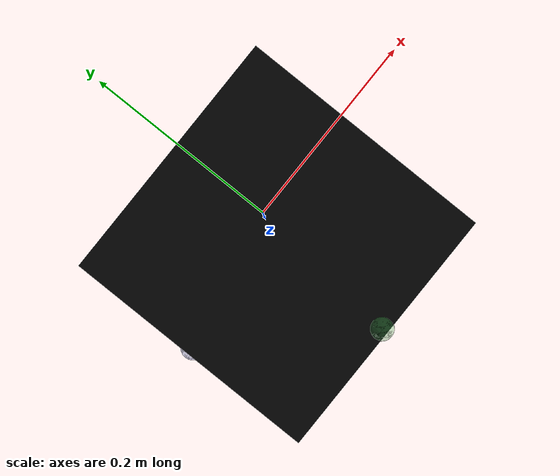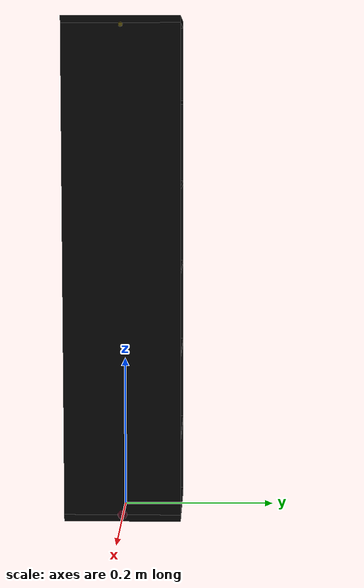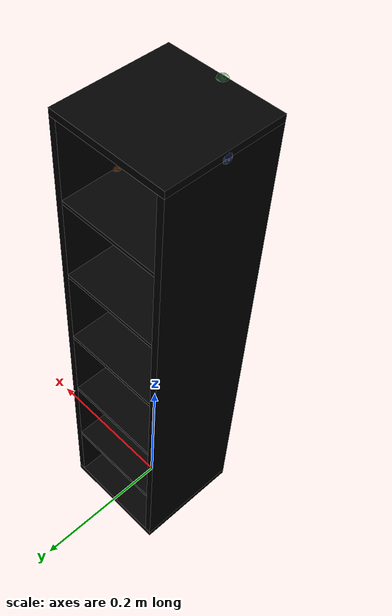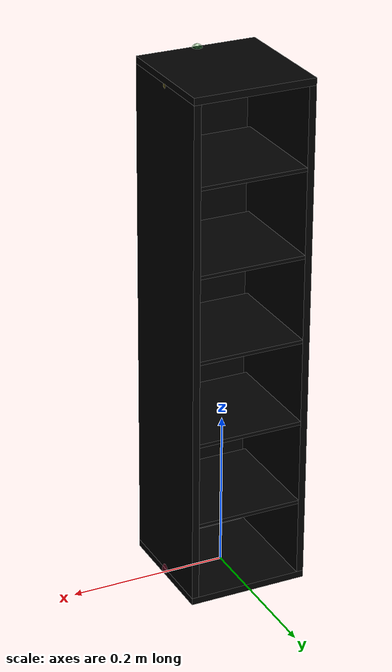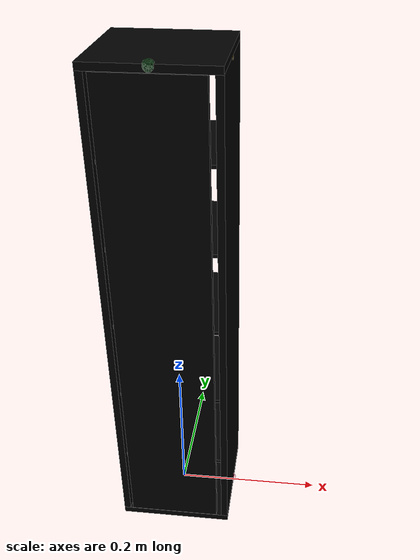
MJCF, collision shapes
<mujoco model="bookcase_expedit_0373">
    <custom>
        <numeric data="-0.087926 -0.242964 0.004485 0.734781 0.0 0.0 -0.678305" name="0_part0_initpos"/>
        <numeric data="-0.304189 0.094349 0.003391 0.707107 0.707107 0.00029 0.00029" name="9_part9_initpos"/>
        <numeric data="-0.082569 0.361092 0.004485 -0.0 -0.005077 -0.999987 -0.0" name="8_part8_initpos"/>
        <numeric data="0.322127 -0.048208 0.002227 0.706374 0.0 -0.0 -0.707839" name="7_part7_initpos"/>
        <numeric data="-0.102243 0.157546 0.002227 0.706824 -0.0 -0.0 -0.70739" name="6_part6_initpos"/>
        <numeric data="0.323127 0.154453 0.002227 0.707113 0.0 -0.0 -0.7071" name="5_part5_initpos"/>
        <numeric data="0.330924 0.356912 0.002227 0.707107 0.0 0.0 -0.707107" name="4_part4_initpos"/>
        <numeric data="-0.09461 -0.030414 0.002227 0.708679 0.0 -0.0 -0.705531" name="3_part3_initpos"/>
        <numeric data="0.111239 0.104158 0.004485 0.500241 -0.499759 0.500241 0.499759" name="2_part2_initpos"/>
        <numeric data="-0.518069 0.096799 0.004485 0.500624 0.499375 0.500624 -0.499375" name="1_part1_initpos"/>
    </custom>
    <asset>
        <mesh file="bookcase_expedit_0373/0.stl" name="part0" scale="0.000355484448 0.000355484448 0.000355484448"/>
        <mesh file="bookcase_expedit_0373/9.stl" name="part9" scale="0.000355484448 0.000355484448 0.000355484448"/>
        <mesh file="bookcase_expedit_0373/8.stl" name="part8" scale="0.000355484448 0.000355484448 0.000355484448"/>
        <mesh file="bookcase_expedit_0373/7.stl" name="part7" scale="0.000355484448 0.000355484448 0.000355484448"/>
        <mesh file="bookcase_expedit_0373/6.stl" name="part6" scale="0.000355484448 0.000355484448 0.000355484448"/>
        <mesh file="bookcase_expedit_0373/5.stl" name="part5" scale="0.000355484448 0.000355484448 0.000355484448"/>
        <mesh file="bookcase_expedit_0373/4.stl" name="part4" scale="0.000355484448 0.000355484448 0.000355484448"/>
        <mesh file="bookcase_expedit_0373/3.stl" name="part3" scale="0.000355484448 0.000355484448 0.000355484448"/>
        <mesh file="bookcase_expedit_0373/2.stl" name="part2" scale="0.000355484448 0.000355484448 0.000355484448"/>
        <mesh file="bookcase_expedit_0373/1.stl" name="part1" scale="0.000355484448 0.000355484448 0.000355484448"/>
    </asset>
    <equality>
        <weld active="false" body1="8_part8" body2="1_part1" solimp="1 1 0.5" solref="0.01 0.3"/>
        <weld active="false" body1="8_part8" body2="2_part2" solimp="1 1 0.5" solref="0.01 0.3"/>
        <weld active="false" body1="0_part0" body2="2_part2" solimp="1 1 0.5" solref="0.01 0.3"/>
        <weld active="false" body1="5_part5" body2="2_part2" solimp="1 1 0.5" solref="0.01 0.3"/>
        <weld active="false" body1="6_part6" body2="2_part2" solimp="1 1 0.5" solref="0.01 0.3"/>
        <weld active="false" body1="7_part7" body2="2_part2" solimp="1 1 0.5" solref="0.01 0.3"/>
        <weld active="false" body1="3_part3" body2="2_part2" solimp="1 1 0.5" solref="0.01 0.3"/>
        <weld active="false" body1="4_part4" body2="2_part2" solimp="1 1 0.5" solref="0.01 0.3"/>
        <weld active="false" body1="9_part9" body2="8_part8" solimp="1 1 0.5" solref="0.01 0.3"/>
    </equality>
    <worldbody>
        <body name="0_part0" pos="-7.10968896e-11 0.0 0.0" quat="1 0 0 0">
            <geom conaffinity="0" contype="0" density="0" mesh="part0" name="0_part0_mesh" pos="0.0 0.0 0.0"
                  rgba="0.82 0.71 0.55 1" type="mesh"/>
            <site name="0_part0_horizontal_radius_site" pos="-7.10968896e-11 0.0 0.0" quat="1 0 0 0" rgba="0 0 0 0"
                  size="0.000355484448"/>
            <site name="0_part0_top_site" pos="-7.10968896e-11 0.0 0.0045146524895999995" quat="1 0 0 0" rgba="0 0 0 0"
                  size="0.000355484448"/>
            <site name="0_part0_bottom_site" pos="-7.10968896e-11 0.0 -0.0045146524895999995" quat="1 0 0 0"
                  rgba="0 0 0 0" size="0.000355484448"/>
            <site name="0_part0_corner_site8" pos="-0.07674909239429688 0.07674909559365692 0.0045146524895999995"
                  quat="1 0 0 0" rgba="0 0 0 0" size="0.00710968896"/>
            <site name="0_part0_corner_site7" pos="0.07674909225210311 0.07674909559365692 0.0045146524895999995"
                  quat="1 0 0 0" rgba="0 0 0 0" size="0.00710968896"/>
            <site name="0_part0_corner_site6" pos="0.07674909225210311 -0.07674909559365692 0.0045146524895999995"
                  quat="1 0 0 0" rgba="0 0 0 0" size="0.00710968896"/>
            <site name="0_part0_corner_site5" pos="-0.07674909239429688 -0.07674909559365692 0.0045146524895999995"
                  quat="1 0 0 0" rgba="0 0 0 0" size="0.00710968896"/>
            <site name="0_part0_corner_site4" pos="-0.07674909239429688 0.07674909559365692 -0.0045146524895999995"
                  quat="1 0 0 0" rgba="0 0 0 0" size="0.00710968896"/>
            <site name="0_part0_corner_site3" pos="0.07674909225210311 0.07674909559365692 -0.0045146524895999995"
                  quat="1 0 0 0" rgba="0 0 0 0" size="0.00710968896"/>
            <site name="0_part0_corner_site2" pos="0.07674909225210311 -0.07674909559365692 -0.0045146524895999995"
                  quat="1 0 0 0" rgba="0 0 0 0" size="0.00710968896"/>
            <site name="0_part0_corner_site1" pos="-0.07674909239429688 -0.07674909559365692 -0.0045146524895999995"
                  quat="1 0 0 0" rgba="0 0 0 0" size="0.00710968896"/>
            <site name="floor-leftwall,0,conn_site1" pos="0.07347863540159999 0.0 0.0045146524895999995" quat="1 0 0 0"
                  rgba="0.9019 0.0980 0.2941 0.3" size="0.00710968896"/>
            <geom density="50" name="noviz_collision_0_part0_0" pos="0.0 -3.5548444800000002e-09 0.0" quat="1 0 0 0"
                  rgba="0 0 0 0" size="0.0767490923232 0.0767490923232 0.0045146524895999995" solref="0.001 1"
                  type="box"/>
        </body>
        <body name="9_part9" pos="-1.8129706847999998e-09 -0.073363102956 0.32505498568546853" quat="1 0 0 0">
            <geom conaffinity="0" contype="0" density="0" mesh="part9" name="9_part9_mesh" pos="0.0 0.0 0.0"
                  rgba="0.82 0.71 0.55 1" type="mesh"/>
            <site name="9_part9_horizontal_radius_site" pos="0.0 0.0 0.0" quat="1 0 0 0" rgba="0 0 0 0"
                  size="0.000355484448"/>
            <site name="9_part9_top_site" pos="0.0 0.0 0.33002468183712735" quat="1 0 0 0" rgba="0 0 0 0"
                  size="0.000355484448"/>
            <site name="9_part9_bottom_site" pos="0.0 0.0 -0.33002468183712735" quat="1 0 0 0" rgba="0 0 0 0"
                  size="0.000355484448"/>
            <site name="9_part9_corner_site8" pos="-0.08448483592904224 0.0056433156120000005 0.33002468183712735"
                  quat="1 0 0 0" rgba="0 0 0 0" size="0.00710968896"/>
            <site name="9_part9_corner_site7" pos="0.08448483592904224 0.0056433156120000005 0.33002468183712735"
                  quat="1 0 0 0" rgba="0 0 0 0" size="0.00710968896"/>
            <site name="9_part9_corner_site6" pos="0.08448483592904224 -0.0056433156120000005 0.33002468183712735"
                  quat="1 0 0 0" rgba="0 0 0 0" size="0.00710968896"/>
            <site name="9_part9_corner_site5" pos="-0.08448483592904224 -0.0056433156120000005 0.33002468183712735"
                  quat="1 0 0 0" rgba="0 0 0 0" size="0.00710968896"/>
            <site name="9_part9_corner_site4" pos="-0.08448483592904224 0.0056433156120000005 -0.33002468183712735"
                  quat="1 0 0 0" rgba="0 0 0 0" size="0.00710968896"/>
            <site name="9_part9_corner_site3" pos="0.08448483592904224 0.0056433156120000005 -0.33002468183712735"
                  quat="1 0 0 0" rgba="0 0 0 0" size="0.00710968896"/>
            <site name="9_part9_corner_site2" pos="0.08448483592904224 -0.0056433156120000005 -0.33002468183712735"
                  quat="1 0 0 0" rgba="0 0 0 0" size="0.00710968896"/>
            <site name="9_part9_corner_site1" pos="-0.08448483592904224 -0.0056433156120000005 -0.33002468183712735"
                  quat="1 0 0 0" rgba="0 0 0 0" size="0.00710968896"/>
            <site name="backwall-top,0,conn_site1" pos="0.0 0.00016885866764447999 0.3269034983808"
                  quat="0.7071067 0.7071068 0 0" rgba="0.2352 0.7058 0.2941 0.3" size="0.00710968896"/>
            <geom density="50" name="noviz_collision_9_part9_0"
                  pos="-0.00177741868515552 0.001199760012 -5.901041836799999e-06" quat="1 0 0 0" rgba="0 0 0 0"
                  size="0.06220977840000001 0.004621297824 0.31993600320000004" solref="0.001 1" type="box"/>
        </body>
        <body name="8_part8" pos="-7.10968896e-11 0.0 0.6501099585023999" quat="1 0 0 0">
            <geom conaffinity="0" contype="0" density="0" mesh="part8" name="8_part8_mesh" pos="0.0 0.0 0.0"
                  rgba="0.82 0.71 0.55 1" type="mesh"/>
            <site name="8_part8_horizontal_radius_site" pos="-7.10968896e-11 0.0 -0.0" quat="1 0 0 0" rgba="0 0 0 0"
                  size="0.000355484448"/>
            <site name="8_part8_top_site" pos="-7.10968896e-11 0.0 0.0045146524895999995" quat="1 0 0 0" rgba="0 0 0 0"
                  size="0.000355484448"/>
            <site name="8_part8_bottom_site" pos="-7.10968896e-11 0.0 -0.0045146524895999995" quat="1 0 0 0"
                  rgba="0 0 0 0" size="0.000355484448"/>
            <site name="8_part8_corner_site8" pos="-0.07674909239429688 0.07674909559365692 0.0045146524895999995"
                  quat="1 0 0 0" rgba="0 0 0 0" size="0.00710968896"/>
            <site name="8_part8_corner_site7" pos="0.07674909225210311 0.07674909559365692 0.0045146524895999995"
                  quat="1 0 0 0" rgba="0 0 0 0" size="0.00710968896"/>
            <site name="8_part8_corner_site6" pos="0.07674909225210311 -0.07674909559365692 0.0045146524895999995"
                  quat="1 0 0 0" rgba="0 0 0 0" size="0.00710968896"/>
            <site name="8_part8_corner_site5" pos="-0.07674909239429688 -0.07674909559365692 0.0045146524895999995"
                  quat="1 0 0 0" rgba="0 0 0 0" size="0.00710968896"/>
            <site name="8_part8_corner_site4" pos="-0.07674909239429688 0.07674909559365692 -0.0045146524895999995"
                  quat="1 0 0 0" rgba="0 0 0 0" size="0.00710968896"/>
            <site name="8_part8_corner_site3" pos="0.07674909225210311 0.07674909559365692 -0.0045146524895999995"
                  quat="1 0 0 0" rgba="0 0 0 0" size="0.00710968896"/>
            <site name="8_part8_corner_site2" pos="0.07674909225210311 -0.07674909559365692 -0.0045146524895999995"
                  quat="1 0 0 0" rgba="0 0 0 0" size="0.00710968896"/>
            <site name="8_part8_corner_site1" pos="-0.07674909239429688 -0.07674909559365692 -0.0045146524895999995"
                  quat="1 0 0 0" rgba="0 0 0 0" size="0.00710968896"/>
            <site name="top-leftwall,0,conn_site1" pos="0.07038592070399999 0.0 -0.0066831253966224" quat="1 0 0 0"
                  rgba="1.0 0.8823 0.0980 0.3" size="0.00710968896"/>
            <site name="top-rightwall,0,conn_site1" pos="-0.07298095717440001 0.0 -0.00334156092088896" quat="1 0 0 0"
                  rgba="0.2627 0.3882 0.8470 0.3" size="0.00710968896"/>
            <site name="top-backwall,0,conn_site1" pos="0.0 -0.07319424784319999 0.0018485013553776"
                  quat="0.7071067 0.7071068 0 0" rgba="0.2352 0.7058 0.2941 0.3" size="0.00710968896"/>
            <geom density="50" name="noviz_collision_8_part8_0" pos="0.0 -3.5548444800000002e-09 0.0" quat="1 0 0 0"
                  rgba="0 0 0 0" size="0.0767490923232 0.0767490923232 0.004514677373511361" solref="0.001 1"
                  type="box"/>
        </body>
        <body name="7_part7" pos="-2.843875584e-10 0.0045146547291520225 0.5447680743065838" quat="1 0 0 0">
            <geom conaffinity="0" contype="0" density="0" mesh="part7" name="7_part7_mesh" pos="0.0 0.0 0.0"
                  rgba="0.82 0.71 0.55 1" type="mesh"/>
            <site name="7_part7_horizontal_radius_site" pos="2.132906688e-10 1.1020017888e-09 0.0" quat="1 0 0 0"
                  rgba="0 0 0 0" size="0.000355484448"/>
            <site name="7_part7_top_site" pos="1.7774222400000002e-10 1.1020017888e-09 0.0022573392555307967"
                  quat="1 0 0 0" rgba="0 0 0 0" size="0.000355484448"/>
            <site name="7_part7_bottom_site" pos="1.7774222400000002e-10 1.1020017888e-09 -0.0022573392555307967"
                  quat="1 0 0 0" rgba="0 0 0 0" size="0.000355484448"/>
            <site name="7_part7_corner_site8" pos="-0.067719787344 0.07223444417051027 0.0022573392555307967"
                  quat="1 0 0 0" rgba="0 0 0 0" size="0.00710968896"/>
            <site name="7_part7_corner_site7" pos="0.06771978773503289 0.07223444417051027 0.0022573392555307967"
                  quat="1 0 0 0" rgba="0 0 0 0" size="0.00710968896"/>
            <site name="7_part7_corner_site6" pos="0.06771978773503289 -0.07223444196650668 0.0022573392555307967"
                  quat="1 0 0 0" rgba="0 0 0 0" size="0.00710968896"/>
            <site name="7_part7_corner_site5" pos="-0.067719787344 -0.07223444196650668 0.0022573392555307967"
                  quat="1 0 0 0" rgba="0 0 0 0" size="0.00710968896"/>
            <site name="7_part7_corner_site4" pos="-0.067719787344 0.07223444417051027 -0.0022573392555307967"
                  quat="1 0 0 0" rgba="0 0 0 0" size="0.00710968896"/>
            <site name="7_part7_corner_site3" pos="0.06771978773503289 0.07223444417051027 -0.0022573392555307967"
                  quat="1 0 0 0" rgba="0 0 0 0" size="0.00710968896"/>
            <site name="7_part7_corner_site2" pos="0.06771978773503289 -0.07223444196650668 -0.0022573392555307967"
                  quat="1 0 0 0" rgba="0 0 0 0" size="0.00710968896"/>
            <site name="7_part7_corner_site1" pos="-0.067719787344 -0.07223444196650668 -0.0022573392555307967"
                  quat="1 0 0 0" rgba="0 0 0 0" size="0.00710968896"/>
            <site name="shelf-leftwall,0,180,conn_site5"
                  pos="0.067897529568 -0.0022573262447999998 -0.00123234727134816" quat="0.7071067 0 0.7071068 0"
                  rgba="0.9607 0.5098 0.1921 0.3" size="0.00710968896"/>
            <geom density="50" name="noviz_collision_7_part7_0" pos="0.0 -3.5548444800000002e-09 0.0" quat="1 0 0 0"
                  rgba="0 0 0 0" size="0.067719787344 0.07223443983359999 0.0022573191351110402" solref="0.001 1"
                  type="box"/>
        </body>
        <body name="6_part6" pos="-2.843875584e-10 0.0045146547291520225 0.4349115216954642" quat="1 0 0 0">
            <geom conaffinity="0" contype="0" density="0" mesh="part6" name="6_part6_mesh" pos="0.0 0.0 0.0"
                  rgba="0.82 0.71 0.55 1" type="mesh"/>
            <site name="6_part6_horizontal_radius_site" pos="2.132906688e-10 1.1020017888e-09 -3.55484448e-11"
                  quat="1 0 0 0" rgba="0 0 0 0" size="0.000355484448"/>
            <site name="6_part6_top_site" pos="1.7774222400000002e-10 1.1020017888e-09 0.002257327702286237"
                  quat="1 0 0 0" rgba="0 0 0 0" size="0.000355484448"/>
            <site name="6_part6_bottom_site" pos="1.7774222400000002e-10 1.1020017888e-09 -0.0022573277378346818"
                  quat="1 0 0 0" rgba="0 0 0 0" size="0.000355484448"/>
            <site name="6_part6_corner_site8" pos="-0.067719787344 0.07223444417051027 0.002257327702286237"
                  quat="1 0 0 0" rgba="0 0 0 0" size="0.00710968896"/>
            <site name="6_part6_corner_site7" pos="0.06771978773503289 0.07223444417051027 0.002257327702286237"
                  quat="1 0 0 0" rgba="0 0 0 0" size="0.00710968896"/>
            <site name="6_part6_corner_site6" pos="0.06771978773503289 -0.07223444196650668 0.002257327702286237"
                  quat="1 0 0 0" rgba="0 0 0 0" size="0.00710968896"/>
            <site name="6_part6_corner_site5" pos="-0.067719787344 -0.07223444196650668 0.002257327702286237"
                  quat="1 0 0 0" rgba="0 0 0 0" size="0.00710968896"/>
            <site name="6_part6_corner_site4" pos="-0.067719787344 0.07223444417051027 -0.0022573277378346818"
                  quat="1 0 0 0" rgba="0 0 0 0" size="0.00710968896"/>
            <site name="6_part6_corner_site3" pos="0.06771978773503289 0.07223444417051027 -0.0022573277378346818"
                  quat="1 0 0 0" rgba="0 0 0 0" size="0.00710968896"/>
            <site name="6_part6_corner_site2" pos="0.06771978773503289 -0.07223444196650668 -0.0022573277378346818"
                  quat="1 0 0 0" rgba="0 0 0 0" size="0.00710968896"/>
            <site name="6_part6_corner_site1" pos="-0.067719787344 -0.07223444196650668 -0.0022573277378346818"
                  quat="1 0 0 0" rgba="0 0 0 0" size="0.00710968896"/>
            <site name="shelf-leftwall,0,180,conn_site4" pos="0.068253014016 -0.0022573262447999998 -0.0012205025295408"
                  quat="0.7071067 0 0.7071068 0" rgba="0.9607 0.5098 0.1921 0.3" size="0.00710968896"/>
            <geom density="50" name="noviz_collision_6_part6_0" pos="0.0 -3.5548444800000002e-09 0.0" quat="1 0 0 0"
                  rgba="0 0 0 0" size="0.067719787344 0.07223443983359999 0.0022573191351110402" solref="0.001 1"
                  type="box"/>
        </body>
        <body name="5_part5" pos="-2.843875584e-10 0.0045146547291520225 0.32505498141965516" quat="1 0 0 0">
            <geom conaffinity="0" contype="0" density="0" mesh="part5" name="5_part5_mesh" pos="0.0 0.0 0.0"
                  rgba="0.82 0.71 0.55 1" type="mesh"/>
            <site name="5_part5_horizontal_radius_site" pos="2.132906688e-10 1.1020017888e-09 -0.0" quat="1 0 0 0"
                  rgba="0 0 0 0" size="0.000355484448"/>
            <site name="5_part5_top_site" pos="1.7774222400000002e-10 1.1020017888e-09 0.0022573284132551322"
                  quat="1 0 0 0" rgba="0 0 0 0" size="0.000355484448"/>
            <site name="5_part5_bottom_site" pos="1.7774222400000002e-10 1.1020017888e-09 -0.0022573284132551322"
                  quat="1 0 0 0" rgba="0 0 0 0" size="0.000355484448"/>
            <site name="5_part5_corner_site8" pos="-0.067719787344 0.07223444417051027 0.0022573284132551322"
                  quat="1 0 0 0" rgba="0 0 0 0" size="0.00710968896"/>
            <site name="5_part5_corner_site7" pos="0.06771978773503289 0.07223444417051027 0.0022573284132551322"
                  quat="1 0 0 0" rgba="0 0 0 0" size="0.00710968896"/>
            <site name="5_part5_corner_site6" pos="0.06771978773503289 -0.07223444196650668 0.0022573284132551322"
                  quat="1 0 0 0" rgba="0 0 0 0" size="0.00710968896"/>
            <site name="5_part5_corner_site5" pos="-0.067719787344 -0.07223444196650668 0.0022573284132551322"
                  quat="1 0 0 0" rgba="0 0 0 0" size="0.00710968896"/>
            <site name="5_part5_corner_site4" pos="-0.067719787344 0.07223444417051027 -0.0022573284132551322"
                  quat="1 0 0 0" rgba="0 0 0 0" size="0.00710968896"/>
            <site name="5_part5_corner_site3" pos="0.06771978773503289 0.07223444417051027 -0.0022573284132551322"
                  quat="1 0 0 0" rgba="0 0 0 0" size="0.00710968896"/>
            <site name="5_part5_corner_site2" pos="0.06771978773503289 -0.07223444196650668 -0.0022573284132551322"
                  quat="1 0 0 0" rgba="0 0 0 0" size="0.00710968896"/>
            <site name="5_part5_corner_site1" pos="-0.067719787344 -0.07223444196650668 -0.0022573284132551322"
                  quat="1 0 0 0" rgba="0 0 0 0" size="0.00710968896"/>
            <site name="shelf-leftwall,0,180,conn_site3"
                  pos="0.068253014016 -0.0022573262447999998 -0.00049768533688896" quat="0.7071067 0 0.7071068 0"
                  rgba="0.9607 0.5098 0.1921 0.3" size="0.00710968896"/>
            <geom density="50" name="noviz_collision_5_part5_0" pos="0.0 -3.5548444800000002e-09 0.0" quat="1 0 0 0"
                  rgba="0 0 0 0" size="0.067719787344 0.07223443983359999 0.00225734046417792" solref="0.001 1"
                  type="box"/>
        </body>
        <body name="4_part4" pos="-2.843875584e-10 0.0045146547291520225 0.21519843901093927" quat="1 0 0 0">
            <geom conaffinity="0" contype="0" density="0" mesh="part4" name="4_part4_mesh" pos="0.0 0.0 0.0"
                  rgba="0.82 0.71 0.55 1" type="mesh"/>
            <site name="4_part4_horizontal_radius_site" pos="2.132906688e-10 1.1020017888e-09 3.55484448e-11"
                  quat="1 0 0 0" rgba="0 0 0 0" size="0.000355484448"/>
            <site name="4_part4_top_site" pos="1.7774222400000002e-10 1.1020017888e-09 0.0022573299418382595"
                  quat="1 0 0 0" rgba="0 0 0 0" size="0.000355484448"/>
            <site name="4_part4_bottom_site" pos="1.7774222400000002e-10 1.1020017888e-09 -0.0022573298707413694"
                  quat="1 0 0 0" rgba="0 0 0 0" size="0.000355484448"/>
            <site name="4_part4_corner_site8" pos="-0.067719787344 0.07223444417051027 0.0022573299418382595"
                  quat="1 0 0 0" rgba="0 0 0 0" size="0.00710968896"/>
            <site name="4_part4_corner_site7" pos="0.06771978773503289 0.07223444417051027 0.0022573299418382595"
                  quat="1 0 0 0" rgba="0 0 0 0" size="0.00710968896"/>
            <site name="4_part4_corner_site6" pos="0.06771978773503289 -0.07223444196650668 0.0022573299418382595"
                  quat="1 0 0 0" rgba="0 0 0 0" size="0.00710968896"/>
            <site name="4_part4_corner_site5" pos="-0.067719787344 -0.07223444196650668 0.0022573299418382595"
                  quat="1 0 0 0" rgba="0 0 0 0" size="0.00710968896"/>
            <site name="4_part4_corner_site4" pos="-0.067719787344 0.07223444417051027 -0.0022573298707413694"
                  quat="1 0 0 0" rgba="0 0 0 0" size="0.00710968896"/>
            <site name="4_part4_corner_site3" pos="0.06771978773503289 0.07223444417051027 -0.0022573298707413694"
                  quat="1 0 0 0" rgba="0 0 0 0" size="0.00710968896"/>
            <site name="4_part4_corner_site2" pos="0.06771978773503289 -0.07223444196650668 -0.0022573298707413694"
                  quat="1 0 0 0" rgba="0 0 0 0" size="0.00710968896"/>
            <site name="4_part4_corner_site1" pos="-0.067719787344 -0.07223444196650668 -0.0022573298707413694"
                  quat="1 0 0 0" rgba="0 0 0 0" size="0.00710968896"/>
            <site name="shelf-leftwall,0,180,conn_site2"
                  pos="0.067897529568 -0.0022573262447999998 -0.0009835259319705598" quat="0.7071067 0 0.7071068 0"
                  rgba="0.9607 0.5098 0.1921 0.3" size="0.00710968896"/>
            <geom density="50" name="noviz_collision_4_part4_0" pos="0.0 -3.5548444800000002e-09 -2.132906688e-08"
                  quat="1 0 0 0" rgba="0 0 0 0" size="0.067719787344 0.07223443983359999 0.0022573191351110402"
                  solref="0.001 1" type="box"/>
        </body>
        <body name="3_part3" pos="-2.843875584e-10 0.0045146547291520225 0.10534188888821093" quat="1 0 0 0">
            <geom conaffinity="0" contype="0" density="0" mesh="part3" name="3_part3_mesh" pos="0.0 0.0 0.0"
                  rgba="0.82 0.71 0.55 1" type="mesh"/>
            <site name="3_part3_horizontal_radius_site" pos="2.132906688e-10 1.1020017888e-09 0.0" quat="1 0 0 0"
                  rgba="0 0 0 0" size="0.000355484448"/>
            <site name="3_part3_top_site" pos="1.7774222400000002e-10 1.1020017888e-09 0.002257328768739581"
                  quat="1 0 0 0" rgba="0 0 0 0" size="0.000355484448"/>
            <site name="3_part3_bottom_site" pos="1.7774222400000002e-10 1.1020017888e-09 -0.002257328768739581"
                  quat="1 0 0 0" rgba="0 0 0 0" size="0.000355484448"/>
            <site name="3_part3_corner_site8" pos="-0.067719787344 0.07223444417051027 0.002257328768739581"
                  quat="1 0 0 0" rgba="0 0 0 0" size="0.00710968896"/>
            <site name="3_part3_corner_site7" pos="0.06771978773503289 0.07223444417051027 0.002257328768739581"
                  quat="1 0 0 0" rgba="0 0 0 0" size="0.00710968896"/>
            <site name="3_part3_corner_site6" pos="0.06771978773503289 -0.07223444196650668 0.002257328768739581"
                  quat="1 0 0 0" rgba="0 0 0 0" size="0.00710968896"/>
            <site name="3_part3_corner_site5" pos="-0.067719787344 -0.07223444196650668 0.002257328768739581"
                  quat="1 0 0 0" rgba="0 0 0 0" size="0.00710968896"/>
            <site name="3_part3_corner_site4" pos="-0.067719787344 0.07223444417051027 -0.002257328768739581"
                  quat="1 0 0 0" rgba="0 0 0 0" size="0.00710968896"/>
            <site name="3_part3_corner_site3" pos="0.06771978773503289 0.07223444417051027 -0.002257328768739581"
                  quat="1 0 0 0" rgba="0 0 0 0" size="0.00710968896"/>
            <site name="3_part3_corner_site2" pos="0.06771978773503289 -0.07223444196650668 -0.002257328768739581"
                  quat="1 0 0 0" rgba="0 0 0 0" size="0.00710968896"/>
            <site name="3_part3_corner_site1" pos="-0.067719787344 -0.07223444196650668 -0.002257328768739581"
                  quat="1 0 0 0" rgba="0 0 0 0" size="0.00710968896"/>
            <site name="shelf-leftwall,0,180,conn_site1"
                  pos="0.06931946736 -0.0022573262447999998 -0.0005095229690073599" quat="0.7071067 0 0.7071068 0"
                  rgba="0.9607 0.5098 0.1921 0.3" size="0.00710968896"/>
            <geom density="50" name="noviz_collision_3_part3_0" pos="0.0 -3.5548444800000002e-09 1.066453344e-08"
                  quat="1 0 0 0" rgba="0 0 0 0" size="0.067719787344 0.07223443983359999 0.00225734046417792"
                  solref="0.001 1" type="box"/>
        </body>
        <body name="2_part2" pos="0.0722344397625031 0.0 0.3250549857210169" quat="1 0 0 0">
            <geom conaffinity="0" contype="0" density="0" mesh="part2" name="2_part2_mesh" pos="0.0 0.0 0.0"
                  rgba="0.82 0.71 0.55 1" type="mesh"/>
            <site name="2_part2_horizontal_radius_site" pos="-7.10968896e-11 0.0 -2.132906688e-09" quat="1 0 0 0"
                  rgba="0 0 0 0" size="0.000355484448"/>
            <site name="2_part2_top_site" pos="-7.10968896e-11 0.0 0.32054033109851027" quat="1 0 0 0" rgba="0 0 0 0"
                  size="0.000355484448"/>
            <site name="2_part2_bottom_site" pos="-7.10968896e-11 0.0 -0.32054033536432364" quat="1 0 0 0"
                  rgba="0 0 0 0" size="0.000355484448"/>
            <site name="2_part2_corner_site8" pos="-0.004514652560696889 0.07674909559365692 0.32054033109851027"
                  quat="1 0 0 0" rgba="0 0 0 0" size="0.00710968896"/>
            <site name="2_part2_corner_site7" pos="0.004514652418503111 0.07674909559365692 0.32054033109851027"
                  quat="1 0 0 0" rgba="0 0 0 0" size="0.00710968896"/>
            <site name="2_part2_corner_site6" pos="0.004514652418503111 -0.07674909559365692 0.32054033109851027"
                  quat="1 0 0 0" rgba="0 0 0 0" size="0.00710968896"/>
            <site name="2_part2_corner_site5" pos="-0.004514652560696889 -0.07674909559365692 0.32054033109851027"
                  quat="1 0 0 0" rgba="0 0 0 0" size="0.00710968896"/>
            <site name="2_part2_corner_site4" pos="-0.004514652560696889 0.07674909559365692 -0.32054033536432364"
                  quat="1 0 0 0" rgba="0 0 0 0" size="0.00710968896"/>
            <site name="2_part2_corner_site3" pos="0.004514652418503111 0.07674909559365692 -0.32054033536432364"
                  quat="1 0 0 0" rgba="0 0 0 0" size="0.00710968896"/>
            <site name="2_part2_corner_site2" pos="0.004514652418503111 -0.07674909559365692 -0.32054033536432364"
                  quat="1 0 0 0" rgba="0 0 0 0" size="0.00710968896"/>
            <site name="2_part2_corner_site1" pos="-0.004514652560696889 -0.07674909559365692 -0.32054033536432364"
                  quat="1 0 0 0" rgba="0 0 0 0" size="0.00710968896"/>
            <site name="leftwall-shelf,0,180,conn_site5"
                  pos="-0.0043369102656 0.0022573262447999998 0.21848074174079998" quat="0.7071067 0 0.7071068 0"
                  rgba="0.9607 0.5098 0.1921 0.3" size="0.00710968896"/>
            <site name="leftwall-shelf,0,180,conn_site4"
                  pos="-0.0039814258176 0.0022573262447999998 0.10863604730880001" quat="0.7071067 0 0.7071068 0"
                  rgba="0.9607 0.5098 0.1921 0.3" size="0.00710968896"/>
            <site name="leftwall-shelf,0,180,conn_site3"
                  pos="-0.0039814258176 0.0022573262447999998 -0.00049768533688896" quat="0.7071067 0 0.7071068 0"
                  rgba="0.9607 0.5098 0.1921 0.3" size="0.00710968896"/>
            <site name="leftwall-shelf,0,180,conn_site2"
                  pos="-0.0043369102656 0.0022573262447999998 -0.11084005088640002" quat="0.7071067 0 0.7071068 0"
                  rgba="0.9607 0.5098 0.1921 0.3" size="0.00710968896"/>
            <site name="leftwall-shelf,0,180,conn_site1"
                  pos="-0.0029149724735999995 0.0022573262447999998 -0.22022261553600003" quat="0.7071067 0 0.7071068 0"
                  rgba="0.9607 0.5098 0.1921 0.3" size="0.00710968896"/>
            <site name="leftwall-floor,0,conn_site1" pos="0.001244195568 0.0 -0.3205403267616" quat="1 0 0 0"
                  rgba="0.9019 0.0980 0.2941 0.3" size="0.00710968896"/>
            <site name="leftwall-top,0,conn_site1" pos="-0.0018485191296 0.0 0.3183718716288" quat="1 0 0 0"
                  rgba="1.0 0.8823 0.0980 0.3" size="0.00710968896"/>
            <geom density="50" name="noviz_collision_2_part2_0" pos="0.0 -3.5548444800000002e-09 -2.132906688e-08"
                  quat="1 0 0 0" rgba="0 0 0 0" size="0.0045146524895999995 0.0767490923232 0.3205403267616"
                  solref="0.001 1" type="box"/>
        </body>
        <body name="1_part1" pos="-0.07223443990469688 0.0 0.3250549857210169" quat="1 0 0 0">
            <geom conaffinity="0" contype="0" density="0" mesh="part1" name="1_part1_mesh" pos="0.0 0.0 0.0"
                  rgba="0.82 0.71 0.55 1" type="mesh"/>
            <site name="1_part1_horizontal_radius_site" pos="0.0 0.0 -2.132906688e-09" quat="1 0 0 0" rgba="0 0 0 0"
                  size="0.000355484448"/>
            <site name="1_part1_top_site" pos="0.0 0.0 0.32054033109851027" quat="1 0 0 0" rgba="0 0 0 0"
                  size="0.000355484448"/>
            <site name="1_part1_bottom_site" pos="0.0 0.0 -0.32054033536432364" quat="1 0 0 0" rgba="0 0 0 0"
                  size="0.000355484448"/>
            <site name="1_part1_corner_site8" pos="-0.0045146524895999995 0.07674909559365692 0.32054033109851027"
                  quat="1 0 0 0" rgba="0 0 0 0" size="0.00710968896"/>
            <site name="1_part1_corner_site7" pos="0.0045146524895999995 0.07674909559365692 0.32054033109851027"
                  quat="1 0 0 0" rgba="0 0 0 0" size="0.00710968896"/>
            <site name="1_part1_corner_site6" pos="0.0045146524895999995 -0.07674909559365692 0.32054033109851027"
                  quat="1 0 0 0" rgba="0 0 0 0" size="0.00710968896"/>
            <site name="1_part1_corner_site5" pos="-0.0045146524895999995 -0.07674909559365692 0.32054033109851027"
                  quat="1 0 0 0" rgba="0 0 0 0" size="0.00710968896"/>
            <site name="1_part1_corner_site4" pos="-0.0045146524895999995 0.07674909559365692 -0.32054033536432364"
                  quat="1 0 0 0" rgba="0 0 0 0" size="0.00710968896"/>
            <site name="1_part1_corner_site3" pos="0.0045146524895999995 0.07674909559365692 -0.32054033536432364"
                  quat="1 0 0 0" rgba="0 0 0 0" size="0.00710968896"/>
            <site name="1_part1_corner_site2" pos="0.0045146524895999995 -0.07674909559365692 -0.32054033536432364"
                  quat="1 0 0 0" rgba="0 0 0 0" size="0.00710968896"/>
            <site name="1_part1_corner_site1" pos="-0.0045146524895999995 -0.07674909559365692 -0.32054033536432364"
                  quat="1 0 0 0" rgba="0 0 0 0" size="0.00710968896"/>
            <site name="rightwall-top,0,conn_site1" pos="-0.0007465208956444802 0.0 0.32171342544" quat="1 0 0 0"
                  rgba="0.2627 0.3882 0.8470 0.3" size="0.00710968896"/>
            <geom density="50" name="noviz_collision_1_part1_0" pos="0.0 -3.5548444800000002e-09 -2.132906688e-08"
                  quat="1 0 0 0" rgba="0 0 0 0" size="0.0045146524895999995 0.0767490923232 0.3205403267616"
                  solref="0.001 1" type="box"/>
        </body>
    </worldbody>
    <actuator/>
    <sensor/>
    <contact/>
    <default/>
</mujoco>
